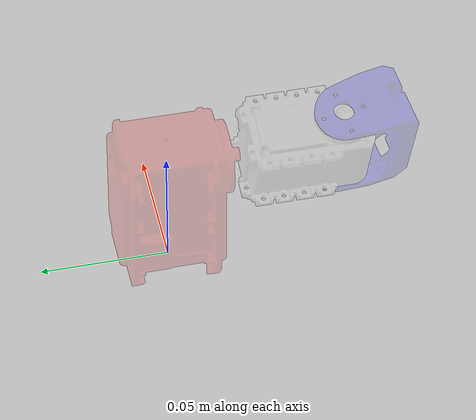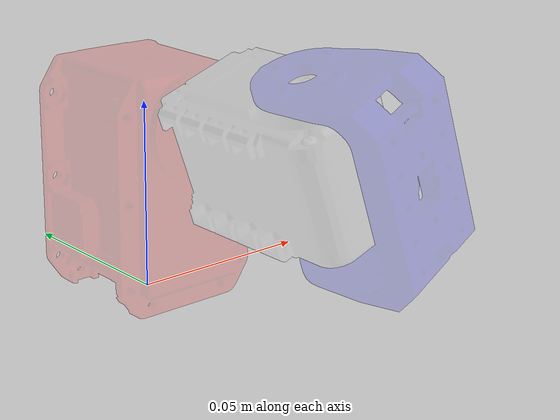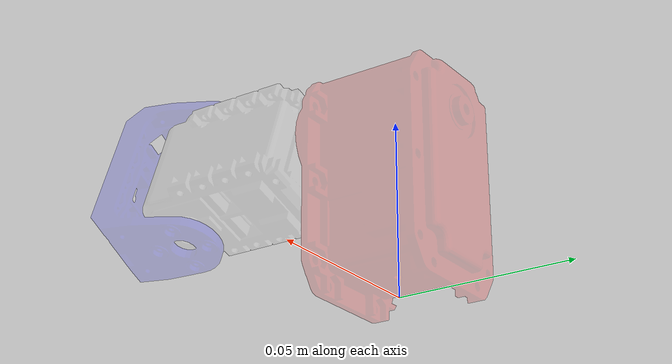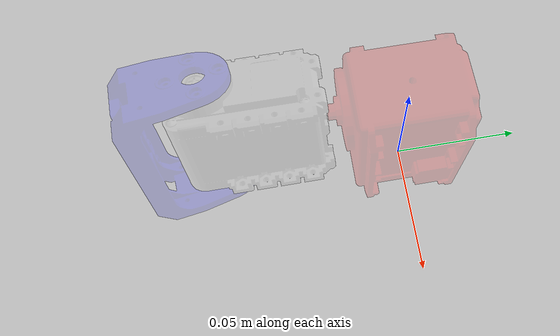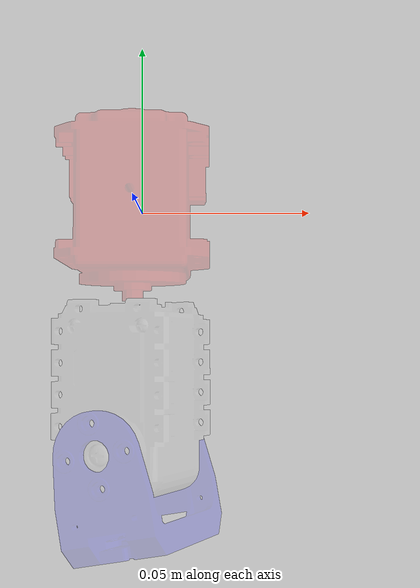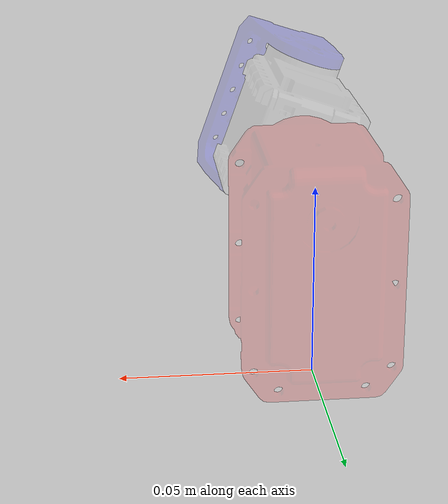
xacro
<?xml version="1.0"?>

<!-- Revolute-Revolute Manipulator -->
<robot name="testgazebo" xmlns:xacro="http://www.ros.org/wiki/xacro">

  <link name="world"/>

  <joint name="fixed" type="fixed">
    <parent link="world"/>
    <child link="M64"/>
  </joint>

  <link
    name="M64">
    <inertial>
      <origin
        xyz="0 0.00036546 0.03152"
        rpy="0 0 0" />
      <mass value = "0.0001194" />
      <inertia
        ixx="5.7572E-08"
        ixy="4.9537E-24"
        ixz="-2.1309E-24"
        iyy="5.474E-08"
        iyz="-7.6125E-10"
        izz="3.4629E-08" />
    </inertial>
    <visual>
      <origin
        xyz="0 0 0"
        rpy="0 0 0" />
      <geometry>
        <mesh
          filename="package://TestGazebo/meshes/M64.STL" />
      </geometry>
      <material
        name="">
        <color
          rgba="1 0 0 0.1" />
      </material>
    </visual>
    <collision>
      <origin
        xyz="0 0 0"
        rpy="0 0 0" />
      <geometry>
        <mesh
          filename="package://TestGazebo/meshes/M64_collision.STL" />
      </geometry>
    </collision>
  </link>
  <link
    name="A12">
    <inertial>
      <origin
        xyz="-0.00042674 -0.00015143 0.0254"
        rpy="0 0 0" />
      <mass
        value="6.9873E-05" />
      <inertia
        ixx="2.3199E-08"
        ixy="-6.6291E-10"
        ixz="1.1553E-23"
        iyy="2.1566E-08"
        iyz="-3.1637E-23"
        izz="1.4713E-08" />
    </inertial>
    <visual>
      <origin
        xyz="0 0 0"
        rpy="0 0 0" />
      <geometry>
        <mesh
          filename="package://TestGazebo/meshes/A12.STL" />
      </geometry>
      <material
        name="">
        <color
          rgba="0.84314 0.84314 0.84314 0.1" />
      </material>
    </visual>
    <collision>
      <origin
        xyz="0 0 0"
        rpy="0 0 0" />
      <geometry>
        <mesh
          filename="package://TestGazebo/meshes/A12_collision.STL" />
      </geometry>
    </collision>
  </link>
  <joint
    name="joint1"
    type="continuous">
    <origin
      xyz="0 -0.028 0.0481"
      rpy="1.5708 0 0" />
    <parent
      link="M64" />
    <child
      link="A12" />
    <axis
      xyz="0 0 -1" />
    <dynamics damping="0.00000001" />

  </joint>
  <link
    name="Frame">
    <inertial>
      <origin
        xyz="0.010668 0.015372 0.021681"
        rpy="0 0 0" />
      <mass
        value="1.5563E-05" />
      <inertia
        ixx="6.1558E-09"
        ixy="1.4193E-10"
        ixz="1.3063E-09"
        iyy="5.8209E-09"
        iyz="-5.0367E-11"
        izz="2.9381E-09" />
    </inertial>
    <visual>
      <origin
        xyz="0 0 0"
        rpy="0 0 0" />
      <geometry>
        <mesh
          filename="package://TestGazebo/meshes/Frame.STL" />
      </geometry>
      <material
        name="">
        <color
          rgba="0 0 1 0.1" />
      </material>
    </visual>
    <collision>
      <origin
        xyz="0 0 0"
        rpy="0 0 0" />
      <geometry>
        <mesh
          filename="package://TestGazebo/meshes/Frame_collision.STL" />
      </geometry>
    </collision>
  </link>
  <joint
    name="joint2"
    type="continuous">
    <origin
      xyz="-0.0080263 0.022618 0.0385"
      rpy="1.5708 0 0" />
    <parent
      link="A12" />
    <child
      link="Frame" />
    <axis
      xyz="-0.33443115310999 0 -0.942420184328372" />
    <dynamics damping="0.00000001" />
  </joint>

  <transmission name="tran1">
    <type>transmission_interface/SimpleTransmission</type>
    <joint name="joint1">
      <hardwareInterface>EffortJointInterface</hardwareInterface>
    </joint>
    <actuator name="M64">
      <hardwareInterface>EffortJointInterface</hardwareInterface>
      <mechanicalReduction>1</mechanicalReduction>
    </actuator>
  </transmission>

  <transmission name="tran2">
    <type>transmission_interface/SimpleTransmission</type>
    <joint name="joint2">
      <hardwareInterface>EffortJointInterface</hardwareInterface>
    </joint>
    <actuator name="A12">
      <hardwareInterface>EffortJointInterface</hardwareInterface>
      <mechanicalReduction>1</mechanicalReduction>
    </actuator>
  </transmission>

  <gazebo>
    <plugin name="gazebo_ros_control" filename="libgazebo_ros_control.so">
      <robotNamespace>/testgazebo</robotNamespace>
      <robotSimType>gazebo_ros_control/DefaultRobotHWSim</robotSimType>
    </plugin>
  </gazebo>

</robot>
